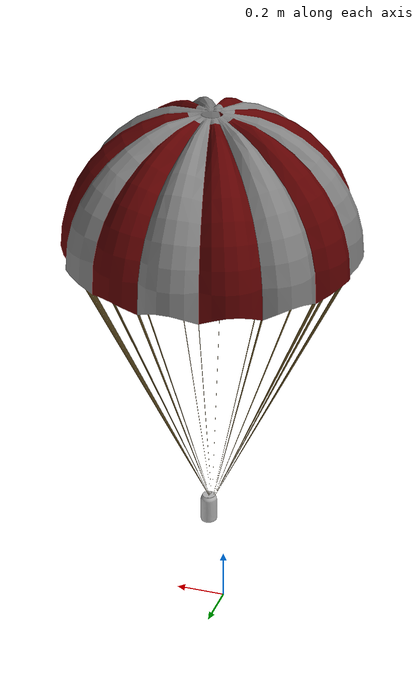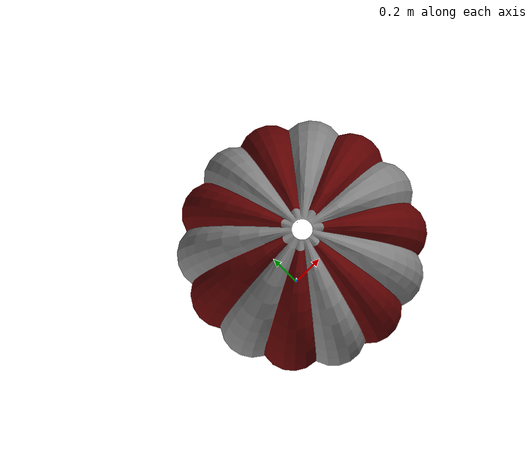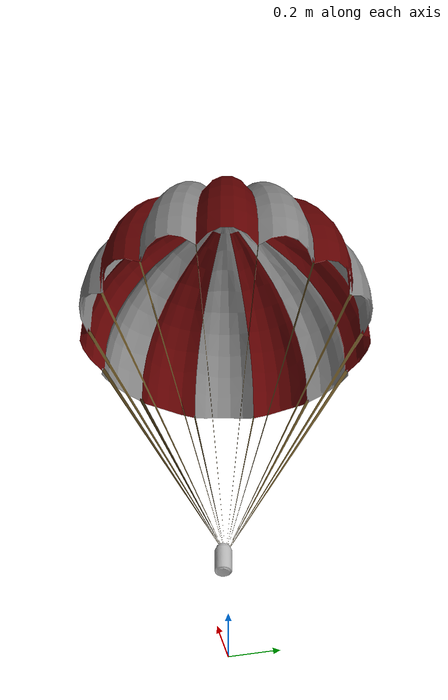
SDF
<?xml version="1.0"?>
<sdf version='1.5'>
  <model name='cansat'>
    <pose>0 0 0.246 0 0 0</pose>
    <include>
      <uri>model://parachute_small</uri>
      <pose>0.05 0 0.2 0 0 0</pose>
    </include>
    <link name='base_link'>
      <pose>0 0 0 0 0 0</pose>
      <inertial>
        <pose>0 0 0 0 0 0</pose>
        <mass>1.5</mass>
        <inertia>
          <ixx>0.197563</ixx>
          <ixy>0</ixy>
          <ixz>0</ixz>
          <iyy>0.1458929</iyy>
          <iyz>0</iyz>
          <izz>0.1477</izz>
        </inertia>
      </inertial>
      <collision name='base_link_collision'>
        <pose>0 0 -0.07 0 0 0</pose>
        <geometry>
          <box>
            <size>0.47 0.47 0.11</size>
          </box>
        </geometry>
        <surface>
          <contact>
            <ode>
              <max_vel>10</max_vel>
              <min_depth>0.01</min_depth>
            </ode>
          </contact>
        </surface>
      </collision>
      <visual name='base_link_visual'>
        <pose>0.07 0 -0.08 0 0 0</pose>
        <geometry>
          <mesh>
            <scale>1 1 1</scale>
            <uri>model://coke_can/meshes/coke_can.dae</uri>
          </mesh>
        </geometry>
      </visual>
      <gravity>1</gravity>
      <velocity_decay/>
      <self_collide>0</self_collide>
      <sensor name="camera" type="camera">
        <pose>0.0 0 0.2 0 0 3.14159</pose>
        <camera>
          <horizontal_fov>2.0</horizontal_fov>
          <image>
            <format>R8G8B8</format>
            <width>640</width>
            <height>360</height>
          </image>
          <clip>
            <near>0.05</near>
            <far>15000</far>
          </clip>
        </camera>
        <always_on>1</always_on>
        <update_rate>10</update_rate>
        <visualize>true</visualize>
        <plugin name="GstCameraPlugin" filename="libgazebo_gst_camera_plugin.so">
            <robotNamespace></robotNamespace>
            <udpHost>127.0.0.1</udpHost>
            <udpPort>5600</udpPort>
        </plugin>
        <plugin name="GeotaggedImagesPlugin" filename="libgazebo_geotagged_images_plugin.so">
            <robotNamespace>typhoon_h480</robotNamespace>
            <interval>1</interval>
            <width>3840</width>
            <height>2160</height>
            <maximum_zoom>8.0</maximum_zoom>
        </plugin>
      </sensor>
    </link>
    <link name='cansat/imu_link'>
      <pose>0 0 0 0 0 0</pose>
      <inertial>
        <pose>0 0 0 0 0 0</pose>
        <mass>0.015</mass>
        <inertia>
          <ixx>1e-05</ixx>
          <ixy>0</ixy>
          <ixz>0</ixz>
          <iyy>1e-05</iyy>
          <iyz>0</iyz>
          <izz>1e-05</izz>
        </inertia>
      </inertial>
    </link>
    <joint name='cansat/imu_joint' type='revolute'>
      <child>cansat/imu_link</child>
      <parent>base_link</parent>
      <axis>
        <xyz>1 0 0</xyz>
        <limit>
          <lower>0</lower>
          <upper>0</upper>
          <effort>0</effort>
          <velocity>0</velocity>
        </limit>
        <dynamics>
          <spring_reference>0</spring_reference>
          <spring_stiffness>0</spring_stiffness>
        </dynamics>
        <use_parent_model_frame>1</use_parent_model_frame>
      </axis>
    </joint>
    <plugin name='gazebo_imu_plugin' filename='libgazebo_imu_plugin.so'>
      <robotNamespace></robotNamespace>
      <linkName>cansat/imu_link</linkName>
      <imuTopic>/imu</imuTopic>
      <gyroscopeNoiseDensity>0.0003394</gyroscopeNoiseDensity>
      <gyroscopeRandomWalk>3.8785e-05</gyroscopeRandomWalk>
      <gyroscopeBiasCorrelationTime>1000.0</gyroscopeBiasCorrelationTime>
      <gyroscopeTurnOnBiasSigma>0.0087</gyroscopeTurnOnBiasSigma>
      <accelerometerNoiseDensity>0.004</accelerometerNoiseDensity>
      <accelerometerRandomWalk>0.006</accelerometerRandomWalk>
      <accelerometerBiasCorrelationTime>300.0</accelerometerBiasCorrelationTime>
      <accelerometerTurnOnBiasSigma>0.196</accelerometerTurnOnBiasSigma>
    </plugin>
    <plugin name="gps_plugin" filename="libgazebo_gps_plugin.so">
        <robotNamespace></robotNamespace>
        <gpsNoise>true</gpsNoise>
    </plugin>
    <plugin name='magnetometer_plugin' filename='libgazebo_magnetometer_plugin.so'>
      <robotNamespace/>
      <pubRate>100</pubRate>
      <noiseDensity>0.0004</noiseDensity>
      <randomWalk>6.4e-06</randomWalk>
      <biasCorrelationTime>600</biasCorrelationTime>
      <magTopic>/mag</magTopic>
    </plugin>
    <plugin name='barometer_plugin' filename='libgazebo_barometer_plugin.so'>
      <robotNamespace/>
      <pubRate>50</pubRate>
      <baroTopic>/baro</baroTopic>
    </plugin>
    <joint name="parachute_joint" type="revolute">
      <child>parachute_small::chute</child>
      <parent>base_link</parent>
      <axis>
        <xyz>1 0 0</xyz>
        <limit>
          <upper>0</upper>
          <lower>0</lower>
        </limit>
      </axis>
    </joint>
    <plugin name='wind_plugin' filename='libgazebo_wind_plugin.so'>
      <frameId>base_link</frameId>
      <linkName>base_link</linkName>
      <robotNamespace/>
      <xyzOffset>1 0 0</xyzOffset>
      <windDirection>0 1 0</windDirection>
      <windForceMean>2.7</windForceMean>
      <windGustDirection>1 1 0</windGustDirection>
      <windGustDuration>30</windGustDuration>
      <windGustStart>0</windGustStart>
      <windGustForceMean>1.5</windGustForceMean>
    </plugin>
    <plugin name='mavlink_interface' filename='libgazebo_mavlink_interface.so'>
      <robotNamespace></robotNamespace>
      <imuSubTopic>/imu</imuSubTopic>
      <gpsSubTopic>/gps</gpsSubTopic>
      <magSubTopic>/mag</magSubTopic>
      <baroSubTopic>/baro</baroSubTopic>
      <mavlink_addr>INADDR_ANY</mavlink_addr>
      <mavlink_udp_port>14560</mavlink_udp_port>
      <serialEnabled>false</serialEnabled>
      <serialDevice>/dev/ttyACM0</serialDevice>
      <baudRate>921600</baudRate>
      <qgc_addr>INADDR_ANY</qgc_addr>
      <qgc_udp_port>14550</qgc_udp_port>
      <sdk_addr>INADDR_ANY</sdk_addr>
      <sdk_udp_port>14540</sdk_udp_port>
      <hil_mode>false</hil_mode>
      <hil_state_level>false</hil_state_level>
      <enable_lockstep>true</enable_lockstep>
      <use_tcp>true</use_tcp>
      <motorSpeedCommandPubTopic>/gazebo/command/motor_speed</motorSpeedCommandPubTopic>
    </plugin>
    <static>0</static>
  </model>
</sdf>

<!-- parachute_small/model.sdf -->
<sdf version="1.5">
  <model name="parachute_small">
    <pose>0 0 0 0 0 0</pose>
    <static>false</static>

    <link name="chute">
      <pose>0 0 0  0 0 0</pose>
      <inertial>
        <pose>0 0 0  0 0 0</pose>
        <mass>0.100000</mass>
        <inertia>
          <ixx>0.010000</ixx>
          <ixy>0.000000</ixy>
          <ixz>0.000000</ixz>
          <iyy>0.010000</iyy>
          <iyz>0.000000</iyz>
          <izz>0.010000</izz>
        </inertia>
      </inertial>
      <collision name="parachute_collision">
        <pose>0 0 1.25  0 0 0</pose>
        <geometry>
          <cylinder>
            <radius>0.35</radius>
            <length>0.4</length>
          </cylinder>
        </geometry>
      </collision>
      <visual name="parachute_vis">
        <pose>-0.000000 0.000000 0.000000 0.000000 -0.000000 0.000000</pose>
        <geometry>
          <mesh>
            <scale>1 1 1</scale>
            <uri>model://parachute_small/meshes/parachute_small.dae</uri>
          </mesh>
        </geometry>
      </visual>
      <velocity_decay />
    </link>

    <plugin name="parachute_drag" filename="libLiftDragPlugin.so">
      <a0>0</a0>
      <cla>0</cla>
      <cda>1.114</cda>  <!-- Such that Cd = 1.75 at alpha = 90deg (= upright parachute) -->
      <cma>0</cma>
      <alpha_stall>1.5708</alpha_stall> <!-- = upright parachute -->
      <cla_stall>0</cla_stall>
      <cda_stall>0.01</cda_stall>
      <cma_stall>0</cma_stall>
      <cp>0 0 1.25</cp>   <!-- About the vertical center of the chute -->
      <area>3</area>   <!-- Area of a circle of diameter 1m = 0.79, 3m2 is for a better visualization -->
      <air_density>1.2041</air_density>
      <forward>1 0 0</forward>
      <upward>0 0 1</upward>
      <link_name>chute</link_name>
    </plugin>

  </model>
</sdf>
